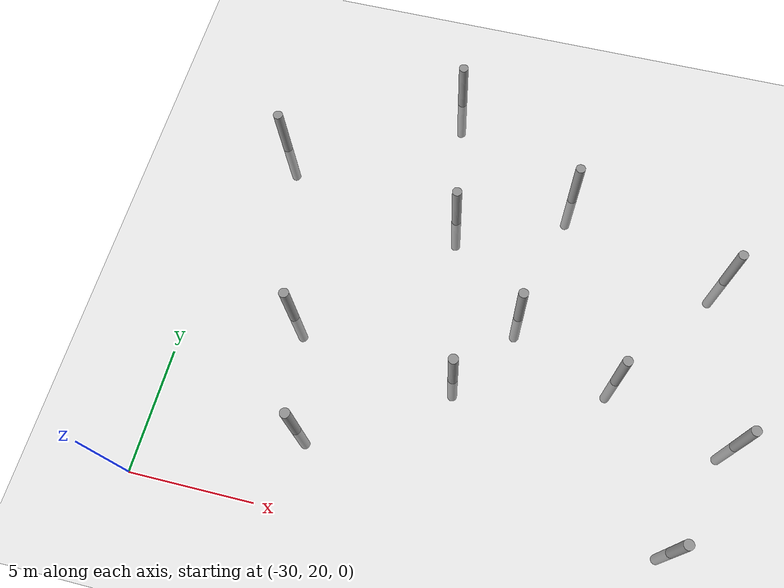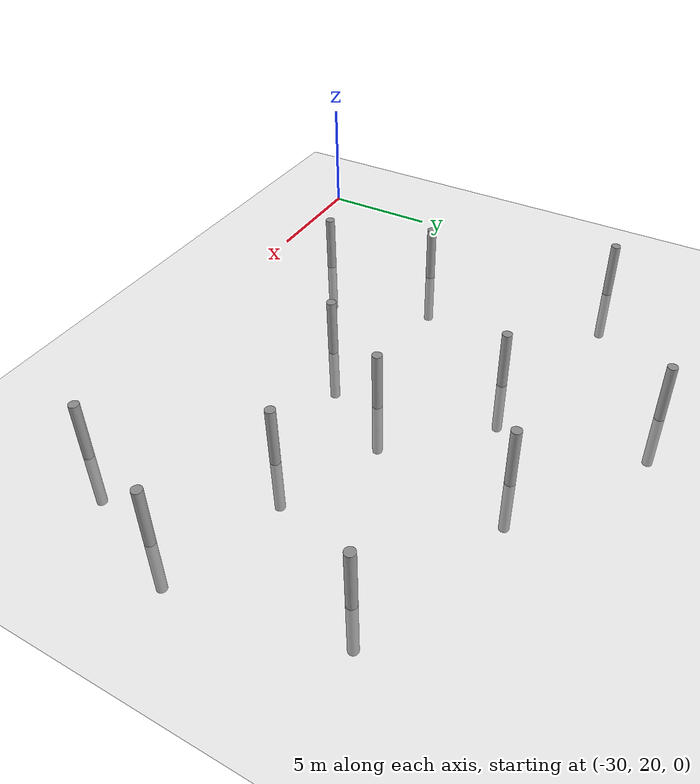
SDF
<sdf version="1.6">
 <world name="default">
  <model name="ground_plane">
   <static>1</static>
   <link name="link">
    <collision name="collision">
     <geometry><plane><normal>0 0 1</normal><size>100 100</size></plane></geometry>
     <surface><friction><ode><mu>100</mu><mu2>50</mu2></ode></friction></surface>
    </collision>
    <visual name="visual">
     <cast_shadows>0</cast_shadows>
     <geometry><plane><normal>0 0 1</normal><size>100 100</size></plane></geometry>
     <material>
      <script><uri>file://media/materials/scripts/gazebo.material</uri><name>Gazebo/Grey</name></script>
     </material>
    </visual>
   </link>
  </model>
  <model name="empty_pillars_5">
   <link name="link">
    <inertial>
     <mass>1</mass>
     <inertia><ixx>0.145833</ixx><ixy>0</ixy><ixz>0</ixz><iyy>0.145833</iyy><iyz>0</iyz><izz>0.125</izz></inertia>
    </inertial>
    <visual name="visual">
     <geometry><cylinder><radius>0.2</radius><length>5</length></cylinder></geometry>
     <material>
      <script><name>Gazebo/Grey</name><uri>file://media/materials/scripts/gazebo.material</uri></script>
      <shader type="vertex"><normal_map>__default__</normal_map></shader>
      <ambient>0.3 0.3 0.3 1</ambient>
      <diffuse>0.7 0.7 0.7 1</diffuse>
      <specular>0.01 0.01 0.01 1</specular>
      <emissive>0 0 0 1</emissive>
     </material>
    </visual>
    <collision name="collision">
     <geometry><cylinder><radius>0.05</radius><length>5</length></cylinder></geometry>
     <surface>
      <friction>
       <ode><mu>1</mu><mu2>1</mu2><fdir1>0 0 0</fdir1><slip1>0</slip1><slip2>0</slip2></ode>
       <torsional>
        <coefficient>1</coefficient>
        <patch_radius>0</patch_radius>
        <surface_radius>0</surface_radius>
        <use_patch_radius>1</use_patch_radius>
        <ode><slip>0</slip></ode>
       </torsional>
      </friction>
      <bounce><restitution_coefficient>0</restitution_coefficient><threshold>1e+06</threshold></bounce>
      <contact>
       <collide_without_contact>0</collide_without_contact>
       <collide_without_contact_bitmask>1</collide_without_contact_bitmask>
       <collide_bitmask>1</collide_bitmask>
       <ode>
        <soft_cfm>0</soft_cfm>
        <soft_erp>0.2</soft_erp>
        <kp>1e+13</kp>
        <kd>1</kd>
        <max_vel>0.01</max_vel>
        <min_depth>0</min_depth>
       </ode>
       <bullet>
        <split_impulse>1</split_impulse>
        <split_impulse_penetration_threshold>-0.01</split_impulse_penetration_threshold>
        <soft_cfm>0</soft_cfm>
        <soft_erp>0.2</soft_erp>
        <kp>1e+13</kp>
        <kd>1</kd>
       </bullet>
      </contact>
     </surface>
    </collision>
   </link>
   <model name="empty_pillar_clone">
    <link name="link">
     <inertial>
      <mass>1</mass>
      <inertia><ixx>0.145833</ixx><ixy>0</ixy><ixz>0</ixz><iyy>0.145833</iyy><iyz>0</iyz><izz>0.125</izz></inertia>
     </inertial>
     <visual name="visual">
      <geometry><cylinder><radius>0.2</radius><length>5</length></cylinder></geometry>
      <material>
       <script><name>Gazebo/Grey</name><uri>file://media/materials/scripts/gazebo.material</uri></script>
       <shader type="vertex"><normal_map>__default__</normal_map></shader>
       <ambient>0.3 0.3 0.3 1</ambient>
       <diffuse>0.7 0.7 0.7 1</diffuse>
       <specular>0.01 0.01 0.01 1</specular>
       <emissive>0 0 0 1</emissive>
      </material>
     </visual>
     <collision name="collision">
      <geometry><cylinder><radius>0.05</radius><length>5</length></cylinder></geometry>
      <surface>
       <friction>
        <ode><mu>1</mu><mu2>1</mu2><fdir1>0 0 0</fdir1><slip1>0</slip1><slip2>0</slip2></ode>
        <torsional>
         <coefficient>1</coefficient>
         <patch_radius>0</patch_radius>
         <surface_radius>0</surface_radius>
         <use_patch_radius>1</use_patch_radius>
         <ode><slip>0</slip></ode>
        </torsional>
       </friction>
       <bounce><restitution_coefficient>0</restitution_coefficient><threshold>1e+06</threshold></bounce>
       <contact>
        <collide_without_contact>0</collide_without_contact>
        <collide_without_contact_bitmask>1</collide_without_contact_bitmask>
        <collide_bitmask>1</collide_bitmask>
        <ode>
         <soft_cfm>0</soft_cfm>
         <soft_erp>0.2</soft_erp>
         <kp>1e+13</kp>
         <kd>1</kd>
         <max_vel>0.01</max_vel>
         <min_depth>0</min_depth>
        </ode>
        <bullet>
         <split_impulse>1</split_impulse>
         <split_impulse_penetration_threshold>-0.01</split_impulse_penetration_threshold>
         <soft_cfm>0</soft_cfm>
         <soft_erp>0.2</soft_erp>
         <kp>1e+13</kp>
         <kd>1</kd>
        </bullet>
       </contact>
      </surface>
     </collision>
    </link>
    <static>0</static>
    <pose>1.47843 -4.49529 0 0 -0 0</pose>
   </model>
   <model name="empty_pillar_clone_1">
    <link name="link">
     <inertial>
      <mass>1</mass>
      <inertia><ixx>0.145833</ixx><ixy>0</ixy><ixz>0</ixz><iyy>0.145833</iyy><iyz>0</iyz><izz>0.125</izz></inertia>
     </inertial>
     <visual name="visual">
      <geometry><cylinder><radius>0.2</radius><length>5</length></cylinder></geometry>
      <material>
       <script><name>Gazebo/Grey</name><uri>file://media/materials/scripts/gazebo.material</uri></script>
       <shader type="vertex"><normal_map>__default__</normal_map></shader>
       <ambient>0.3 0.3 0.3 1</ambient>
       <diffuse>0.7 0.7 0.7 1</diffuse>
       <specular>0.01 0.01 0.01 1</specular>
       <emissive>0 0 0 1</emissive>
      </material>
     </visual>
     <collision name="collision">
      <geometry><cylinder><radius>0.05</radius><length>5</length></cylinder></geometry>
      <surface>
       <friction>
        <ode><mu>1</mu><mu2>1</mu2><fdir1>0 0 0</fdir1><slip1>0</slip1><slip2>0</slip2></ode>
        <torsional>
         <coefficient>1</coefficient>
         <patch_radius>0</patch_radius>
         <surface_radius>0</surface_radius>
         <use_patch_radius>1</use_patch_radius>
         <ode><slip>0</slip></ode>
        </torsional>
       </friction>
       <bounce><restitution_coefficient>0</restitution_coefficient><threshold>1e+06</threshold></bounce>
       <contact>
        <collide_without_contact>0</collide_without_contact>
        <collide_without_contact_bitmask>1</collide_without_contact_bitmask>
        <collide_bitmask>1</collide_bitmask>
        <ode>
         <soft_cfm>0</soft_cfm>
         <soft_erp>0.2</soft_erp>
         <kp>1e+13</kp>
         <kd>1</kd>
         <max_vel>0.01</max_vel>
         <min_depth>0</min_depth>
        </ode>
        <bullet>
         <split_impulse>1</split_impulse>
         <split_impulse_penetration_threshold>-0.01</split_impulse_penetration_threshold>
         <soft_cfm>0</soft_cfm>
         <soft_erp>0.2</soft_erp>
         <kp>1e+13</kp>
         <kd>1</kd>
        </bullet>
       </contact>
      </surface>
     </collision>
    </link>
    <static>0</static>
    <pose>8.92248 2.14838 0 0 -0 0</pose>
   </model>
   <model name="empty_pillar_clone_2">
    <link name="link">
     <inertial>
      <mass>1</mass>
      <inertia><ixx>0.145833</ixx><ixy>0</ixy><ixz>0</ixz><iyy>0.145833</iyy><iyz>0</iyz><izz>0.125</izz></inertia>
     </inertial>
     <visual name="visual">
      <geometry><cylinder><radius>0.2</radius><length>5</length></cylinder></geometry>
      <material>
       <script><name>Gazebo/Grey</name><uri>file://media/materials/scripts/gazebo.material</uri></script>
       <shader type="vertex"><normal_map>__default__</normal_map></shader>
       <ambient>0.3 0.3 0.3 1</ambient>
       <diffuse>0.7 0.7 0.7 1</diffuse>
       <specular>0.01 0.01 0.01 1</specular>
       <emissive>0 0 0 1</emissive>
      </material>
     </visual>
     <collision name="collision">
      <geometry><cylinder><radius>0.05</radius><length>5</length></cylinder></geometry>
      <surface>
       <friction>
        <ode><mu>1</mu><mu2>1</mu2><fdir1>0 0 0</fdir1><slip1>0</slip1><slip2>0</slip2></ode>
        <torsional>
         <coefficient>1</coefficient>
         <patch_radius>0</patch_radius>
         <surface_radius>0</surface_radius>
         <use_patch_radius>1</use_patch_radius>
         <ode><slip>0</slip></ode>
        </torsional>
       </friction>
       <bounce><restitution_coefficient>0</restitution_coefficient><threshold>1e+06</threshold></bounce>
       <contact>
        <collide_without_contact>0</collide_without_contact>
        <collide_without_contact_bitmask>1</collide_without_contact_bitmask>
        <collide_bitmask>1</collide_bitmask>
        <ode>
         <soft_cfm>0</soft_cfm>
         <soft_erp>0.2</soft_erp>
         <kp>1e+13</kp>
         <kd>1</kd>
         <max_vel>0.01</max_vel>
         <min_depth>0</min_depth>
        </ode>
        <bullet>
         <split_impulse>1</split_impulse>
         <split_impulse_penetration_threshold>-0.01</split_impulse_penetration_threshold>
         <soft_cfm>0</soft_cfm>
         <soft_erp>0.2</soft_erp>
         <kp>1e+13</kp>
         <kd>1</kd>
        </bullet>
       </contact>
      </surface>
     </collision>
    </link>
    <static>0</static>
    <pose>6.92427 -1.06221 0 0 -0 0</pose>
   </model>
   <model name="empty_pillar_clone_27">
    <link name="link">
     <inertial>
      <mass>1</mass>
      <inertia><ixx>0.145833</ixx><ixy>0</ixy><ixz>0</ixz><iyy>0.145833</iyy><iyz>0</iyz><izz>0.125</izz></inertia>
     </inertial>
     <visual name="visual">
      <geometry><cylinder><radius>0.2</radius><length>5</length></cylinder></geometry>
      <material>
       <script><name>Gazebo/Grey</name><uri>file://media/materials/scripts/gazebo.material</uri></script>
       <shader type="vertex"><normal_map>__default__</normal_map></shader>
       <ambient>0.3 0.3 0.3 1</ambient>
       <diffuse>0.7 0.7 0.7 1</diffuse>
       <specular>0.01 0.01 0.01 1</specular>
       <emissive>0 0 0 1</emissive>
      </material>
     </visual>
     <collision name="collision">
      <geometry><cylinder><radius>0.05</radius><length>5</length></cylinder></geometry>
      <surface>
       <friction>
        <ode><mu>1</mu><mu2>1</mu2><fdir1>0 0 0</fdir1><slip1>0</slip1><slip2>0</slip2></ode>
        <torsional>
         <coefficient>1</coefficient>
         <patch_radius>0</patch_radius>
         <surface_radius>0</surface_radius>
         <use_patch_radius>1</use_patch_radius>
         <ode><slip>0</slip></ode>
        </torsional>
       </friction>
       <bounce><restitution_coefficient>0</restitution_coefficient><threshold>1e+06</threshold></bounce>
       <contact>
        <collide_without_contact>0</collide_without_contact>
        <collide_without_contact_bitmask>1</collide_without_contact_bitmask>
        <collide_bitmask>1</collide_bitmask>
        <ode>
         <soft_cfm>0</soft_cfm>
         <soft_erp>0.2</soft_erp>
         <kp>1e+13</kp>
         <kd>1</kd>
         <max_vel>0.01</max_vel>
         <min_depth>0</min_depth>
        </ode>
        <bullet>
         <split_impulse>1</split_impulse>
         <split_impulse_penetration_threshold>-0.01</split_impulse_penetration_threshold>
         <soft_cfm>0</soft_cfm>
         <soft_erp>0.2</soft_erp>
         <kp>1e+13</kp>
         <kd>1</kd>
        </bullet>
       </contact>
      </surface>
     </collision>
    </link>
    <static>0</static>
    <pose>4.32163 11.823 0 0 -0 0</pose>
   </model>
   <model name="empty_pillar_clone_29">
    <link name="link">
     <inertial>
      <mass>1</mass>
      <inertia><ixx>0.145833</ixx><ixy>0</ixy><ixz>0</ixz><iyy>0.145833</iyy><iyz>0</iyz><izz>0.125</izz></inertia>
     </inertial>
     <visual name="visual">
      <geometry><cylinder><radius>0.2</radius><length>5</length></cylinder></geometry>
      <material>
       <script><name>Gazebo/Grey</name><uri>file://media/materials/scripts/gazebo.material</uri></script>
       <shader type="vertex"><normal_map>__default__</normal_map></shader>
       <ambient>0.3 0.3 0.3 1</ambient>
       <diffuse>0.7 0.7 0.7 1</diffuse>
       <specular>0.01 0.01 0.01 1</specular>
       <emissive>0 0 0 1</emissive>
      </material>
     </visual>
     <collision name="collision">
      <geometry><cylinder><radius>0.05</radius><length>5</length></cylinder></geometry>
      <surface>
       <friction>
        <ode><mu>1</mu><mu2>1</mu2><fdir1>0 0 0</fdir1><slip1>0</slip1><slip2>0</slip2></ode>
        <torsional>
         <coefficient>1</coefficient>
         <patch_radius>0</patch_radius>
         <surface_radius>0</surface_radius>
         <use_patch_radius>1</use_patch_radius>
         <ode><slip>0</slip></ode>
        </torsional>
       </friction>
       <bounce><restitution_coefficient>0</restitution_coefficient><threshold>1e+06</threshold></bounce>
       <contact>
        <collide_without_contact>0</collide_without_contact>
        <collide_without_contact_bitmask>1</collide_without_contact_bitmask>
        <collide_bitmask>1</collide_bitmask>
        <ode>
         <soft_cfm>0</soft_cfm>
         <soft_erp>0.2</soft_erp>
         <kp>1e+13</kp>
         <kd>1</kd>
         <max_vel>0.01</max_vel>
         <min_depth>0</min_depth>
        </ode>
        <bullet>
         <split_impulse>1</split_impulse>
         <split_impulse_penetration_threshold>-0.01</split_impulse_penetration_threshold>
         <soft_cfm>0</soft_cfm>
         <soft_erp>0.2</soft_erp>
         <kp>1e+13</kp>
         <kd>1</kd>
        </bullet>
       </contact>
      </surface>
     </collision>
    </link>
    <static>0</static>
    <pose>10.08 8.0876 0 0 -0 0</pose>
   </model>
   <model name="empty_pillar_clone_48">
    <link name="link">
     <inertial>
      <mass>1</mass>
      <inertia><ixx>0.145833</ixx><ixy>0</ixy><ixz>0</ixz><iyy>0.145833</iyy><iyz>0</iyz><izz>0.125</izz></inertia>
     </inertial>
     <visual name="visual">
      <geometry><cylinder><radius>0.2</radius><length>5</length></cylinder></geometry>
      <material>
       <script><name>Gazebo/Grey</name><uri>file://media/materials/scripts/gazebo.material</uri></script>
       <shader type="vertex"><normal_map>__default__</normal_map></shader>
       <ambient>0.3 0.3 0.3 1</ambient>
       <diffuse>0.7 0.7 0.7 1</diffuse>
       <specular>0.01 0.01 0.01 1</specular>
       <emissive>0 0 0 1</emissive>
      </material>
     </visual>
     <collision name="collision">
      <geometry><cylinder><radius>0.05</radius><length>5</length></cylinder></geometry>
      <surface>
       <friction>
        <ode><mu>1</mu><mu2>1</mu2><fdir1>0 0 0</fdir1><slip1>0</slip1><slip2>0</slip2></ode>
        <torsional>
         <coefficient>1</coefficient>
         <patch_radius>0</patch_radius>
         <surface_radius>0</surface_radius>
         <use_patch_radius>1</use_patch_radius>
         <ode><slip>0</slip></ode>
        </torsional>
       </friction>
       <bounce><restitution_coefficient>0</restitution_coefficient><threshold>1e+06</threshold></bounce>
       <contact>
        <collide_without_contact>0</collide_without_contact>
        <collide_without_contact_bitmask>1</collide_without_contact_bitmask>
        <collide_bitmask>1</collide_bitmask>
        <ode>
         <soft_cfm>0</soft_cfm>
         <soft_erp>0.2</soft_erp>
         <kp>1e+13</kp>
         <kd>1</kd>
         <max_vel>0.01</max_vel>
         <min_depth>0</min_depth>
        </ode>
        <bullet>
         <split_impulse>1</split_impulse>
         <split_impulse_penetration_threshold>-0.01</split_impulse_penetration_threshold>
         <soft_cfm>0</soft_cfm>
         <soft_erp>0.2</soft_erp>
         <kp>1e+13</kp>
         <kd>1</kd>
        </bullet>
       </contact>
      </surface>
     </collision>
    </link>
    <static>0</static>
    <pose>16.2633 -5.65052 0 0 -0 0</pose>
   </model>
   <model name="empty_pillar_clone_55">
    <link name="link">
     <inertial>
      <mass>1</mass>
      <inertia><ixx>0.145833</ixx><ixy>0</ixy><ixz>0</ixz><iyy>0.145833</iyy><iyz>0</iyz><izz>0.125</izz></inertia>
     </inertial>
     <visual name="visual">
      <geometry><cylinder><radius>0.2</radius><length>5</length></cylinder></geometry>
      <material>
       <script><name>Gazebo/Grey</name><uri>file://media/materials/scripts/gazebo.material</uri></script>
       <shader type="vertex"><normal_map>__default__</normal_map></shader>
       <ambient>0.3 0.3 0.3 1</ambient>
       <diffuse>0.7 0.7 0.7 1</diffuse>
       <specular>0.01 0.01 0.01 1</specular>
       <emissive>0 0 0 1</emissive>
      </material>
     </visual>
     <collision name="collision">
      <geometry><cylinder><radius>0.05</radius><length>5</length></cylinder></geometry>
      <surface>
       <friction>
        <ode><mu>1</mu><mu2>1</mu2><fdir1>0 0 0</fdir1><slip1>0</slip1><slip2>0</slip2></ode>
        <torsional>
         <coefficient>1</coefficient>
         <patch_radius>0</patch_radius>
         <surface_radius>0</surface_radius>
         <use_patch_radius>1</use_patch_radius>
         <ode><slip>0</slip></ode>
        </torsional>
       </friction>
       <bounce><restitution_coefficient>0</restitution_coefficient><threshold>1e+06</threshold></bounce>
       <contact>
        <collide_without_contact>0</collide_without_contact>
        <collide_without_contact_bitmask>1</collide_without_contact_bitmask>
        <collide_bitmask>1</collide_bitmask>
        <ode>
         <soft_cfm>0</soft_cfm>
         <soft_erp>0.2</soft_erp>
         <kp>1e+13</kp>
         <kd>1</kd>
         <max_vel>0.01</max_vel>
         <min_depth>0</min_depth>
        </ode>
        <bullet>
         <split_impulse>1</split_impulse>
         <split_impulse_penetration_threshold>-0.01</split_impulse_penetration_threshold>
         <soft_cfm>0</soft_cfm>
         <soft_erp>0.2</soft_erp>
         <kp>1e+13</kp>
         <kd>1</kd>
        </bullet>
       </contact>
      </surface>
     </collision>
    </link>
    <static>0</static>
    <pose>13.2247 0.382706 0 0 -0 0</pose>
   </model>
   <model name="empty_pillar_clone_56">
    <link name="link">
     <inertial>
      <mass>1</mass>
      <inertia><ixx>0.145833</ixx><ixy>0</ixy><ixz>0</ixz><iyy>0.145833</iyy><iyz>0</iyz><izz>0.125</izz></inertia>
     </inertial>
     <visual name="visual">
      <geometry><cylinder><radius>0.2</radius><length>5</length></cylinder></geometry>
      <material>
       <script><name>Gazebo/Grey</name><uri>file://media/materials/scripts/gazebo.material</uri></script>
       <shader type="vertex"><normal_map>__default__</normal_map></shader>
       <ambient>0.3 0.3 0.3 1</ambient>
       <diffuse>0.7 0.7 0.7 1</diffuse>
       <specular>0.01 0.01 0.01 1</specular>
       <emissive>0 0 0 1</emissive>
      </material>
     </visual>
     <collision name="collision">
      <geometry><cylinder><radius>0.05</radius><length>5</length></cylinder></geometry>
      <surface>
       <friction>
        <ode><mu>1</mu><mu2>1</mu2><fdir1>0 0 0</fdir1><slip1>0</slip1><slip2>0</slip2></ode>
        <torsional>
         <coefficient>1</coefficient>
         <patch_radius>0</patch_radius>
         <surface_radius>0</surface_radius>
         <use_patch_radius>1</use_patch_radius>
         <ode><slip>0</slip></ode>
        </torsional>
       </friction>
       <bounce><restitution_coefficient>0</restitution_coefficient><threshold>1e+06</threshold></bounce>
       <contact>
        <collide_without_contact>0</collide_without_contact>
        <collide_without_contact_bitmask>1</collide_without_contact_bitmask>
        <collide_bitmask>1</collide_bitmask>
        <ode>
         <soft_cfm>0</soft_cfm>
         <soft_erp>0.2</soft_erp>
         <kp>1e+13</kp>
         <kd>1</kd>
         <max_vel>0.01</max_vel>
         <min_depth>0</min_depth>
        </ode>
        <bullet>
         <split_impulse>1</split_impulse>
         <split_impulse_penetration_threshold>-0.01</split_impulse_penetration_threshold>
         <soft_cfm>0</soft_cfm>
         <soft_erp>0.2</soft_erp>
         <kp>1e+13</kp>
         <kd>1</kd>
        </bullet>
       </contact>
      </surface>
     </collision>
    </link>
    <static>0</static>
    <pose>-2.69782 7.67053 0 0 -0 0</pose>
   </model>
   <model name="empty_pillar_clone_57">
    <link name="link">
     <inertial>
      <mass>1</mass>
      <inertia><ixx>0.145833</ixx><ixy>0</ixy><ixz>0</ixz><iyy>0.145833</iyy><iyz>0</iyz><izz>0.125</izz></inertia>
     </inertial>
     <visual name="visual">
      <geometry><cylinder><radius>0.2</radius><length>5</length></cylinder></geometry>
      <material>
       <script><name>Gazebo/Grey</name><uri>file://media/materials/scripts/gazebo.material</uri></script>
       <shader type="vertex"><normal_map>__default__</normal_map></shader>
       <ambient>0.3 0.3 0.3 1</ambient>
       <diffuse>0.7 0.7 0.7 1</diffuse>
       <specular>0.01 0.01 0.01 1</specular>
       <emissive>0 0 0 1</emissive>
      </material>
     </visual>
     <collision name="collision">
      <geometry><cylinder><radius>0.05</radius><length>5</length></cylinder></geometry>
      <surface>
       <friction>
        <ode><mu>1</mu><mu2>1</mu2><fdir1>0 0 0</fdir1><slip1>0</slip1><slip2>0</slip2></ode>
        <torsional>
         <coefficient>1</coefficient>
         <patch_radius>0</patch_radius>
         <surface_radius>0</surface_radius>
         <use_patch_radius>1</use_patch_radius>
         <ode><slip>0</slip></ode>
        </torsional>
       </friction>
       <bounce><restitution_coefficient>0</restitution_coefficient><threshold>1e+06</threshold></bounce>
       <contact>
        <collide_without_contact>0</collide_without_contact>
        <collide_without_contact_bitmask>1</collide_without_contact_bitmask>
        <collide_bitmask>1</collide_bitmask>
        <ode>
         <soft_cfm>0</soft_cfm>
         <soft_erp>0.2</soft_erp>
         <kp>1e+13</kp>
         <kd>1</kd>
         <max_vel>0.01</max_vel>
         <min_depth>0</min_depth>
        </ode>
        <bullet>
         <split_impulse>1</split_impulse>
         <split_impulse_penetration_threshold>-0.01</split_impulse_penetration_threshold>
         <soft_cfm>0</soft_cfm>
         <soft_erp>0.2</soft_erp>
         <kp>1e+13</kp>
         <kd>1</kd>
        </bullet>
       </contact>
      </surface>
     </collision>
    </link>
    <static>0</static>
    <pose>5.4355 5.86468 0 0 -0 0</pose>
   </model>
   <model name="empty_pillar_clone_7">
    <link name="link">
     <inertial>
      <mass>1</mass>
      <inertia><ixx>0.145833</ixx><ixy>0</ixy><ixz>0</ixz><iyy>0.145833</iyy><iyz>0</iyz><izz>0.125</izz></inertia>
     </inertial>
     <visual name="visual">
      <geometry><cylinder><radius>0.2</radius><length>5</length></cylinder></geometry>
      <material>
       <script><name>Gazebo/Grey</name><uri>file://media/materials/scripts/gazebo.material</uri></script>
       <shader type="vertex"><normal_map>__default__</normal_map></shader>
       <ambient>0.3 0.3 0.3 1</ambient>
       <diffuse>0.7 0.7 0.7 1</diffuse>
       <specular>0.01 0.01 0.01 1</specular>
       <emissive>0 0 0 1</emissive>
      </material>
     </visual>
     <collision name="collision">
      <geometry><cylinder><radius>0.05</radius><length>5</length></cylinder></geometry>
      <surface>
       <friction>
        <ode><mu>1</mu><mu2>1</mu2><fdir1>0 0 0</fdir1><slip1>0</slip1><slip2>0</slip2></ode>
        <torsional>
         <coefficient>1</coefficient>
         <patch_radius>0</patch_radius>
         <surface_radius>0</surface_radius>
         <use_patch_radius>1</use_patch_radius>
         <ode><slip>0</slip></ode>
        </torsional>
       </friction>
       <bounce><restitution_coefficient>0</restitution_coefficient><threshold>1e+06</threshold></bounce>
       <contact>
        <collide_without_contact>0</collide_without_contact>
        <collide_without_contact_bitmask>1</collide_without_contact_bitmask>
        <collide_bitmask>1</collide_bitmask>
        <ode>
         <soft_cfm>0</soft_cfm>
         <soft_erp>0.2</soft_erp>
         <kp>1e+13</kp>
         <kd>1</kd>
         <max_vel>0.01</max_vel>
         <min_depth>0</min_depth>
        </ode>
        <bullet>
         <split_impulse>1</split_impulse>
         <split_impulse_penetration_threshold>-0.01</split_impulse_penetration_threshold>
         <soft_cfm>0</soft_cfm>
         <soft_erp>0.2</soft_erp>
         <kp>1e+13</kp>
         <kd>1</kd>
        </bullet>
       </contact>
      </surface>
     </collision>
    </link>
    <static>0</static>
    <pose>16.9242 5.74519 0 0 -0 0</pose>
   </model>
   <model name="empty_pillar_clone_9">
    <link name="link">
     <inertial>
      <mass>1</mass>
      <inertia><ixx>0.145833</ixx><ixy>0</ixy><ixz>0</ixz><iyy>0.145833</iyy><iyz>0</iyz><izz>0.125</izz></inertia>
     </inertial>
     <visual name="visual">
      <geometry><cylinder><radius>0.2</radius><length>5</length></cylinder></geometry>
      <material>
       <script><name>Gazebo/Grey</name><uri>file://media/materials/scripts/gazebo.material</uri></script>
       <shader type="vertex"><normal_map>__default__</normal_map></shader>
       <ambient>0.3 0.3 0.3 1</ambient>
       <diffuse>0.7 0.7 0.7 1</diffuse>
       <specular>0.01 0.01 0.01 1</specular>
       <emissive>0 0 0 1</emissive>
      </material>
     </visual>
     <collision name="collision">
      <geometry><cylinder><radius>0.05</radius><length>5</length></cylinder></geometry>
      <surface>
       <friction>
        <ode><mu>1</mu><mu2>1</mu2><fdir1>0 0 0</fdir1><slip1>0</slip1><slip2>0</slip2></ode>
        <torsional>
         <coefficient>1</coefficient>
         <patch_radius>0</patch_radius>
         <surface_radius>0</surface_radius>
         <use_patch_radius>1</use_patch_radius>
         <ode><slip>0</slip></ode>
        </torsional>
       </friction>
       <bounce><restitution_coefficient>0</restitution_coefficient><threshold>1e+06</threshold></bounce>
       <contact>
        <collide_without_contact>0</collide_without_contact>
        <collide_without_contact_bitmask>1</collide_without_contact_bitmask>
        <collide_bitmask>1</collide_bitmask>
        <ode>
         <soft_cfm>0</soft_cfm>
         <soft_erp>0.2</soft_erp>
         <kp>1e+13</kp>
         <kd>1</kd>
         <max_vel>0.01</max_vel>
         <min_depth>0</min_depth>
        </ode>
        <bullet>
         <split_impulse>1</split_impulse>
         <split_impulse_penetration_threshold>-0.01</split_impulse_penetration_threshold>
         <soft_cfm>0</soft_cfm>
         <soft_erp>0.2</soft_erp>
         <kp>1e+13</kp>
         <kd>1</kd>
        </bullet>
       </contact>
      </surface>
     </collision>
    </link>
    <static>0</static>
    <pose>18.1111 -1.13899 0 0 -0 0</pose>
   </model>
   <static>0</static>
   <pose>-25.786 27.5577 0 0 -0 0</pose>
  </model>
 </world>
</sdf>
